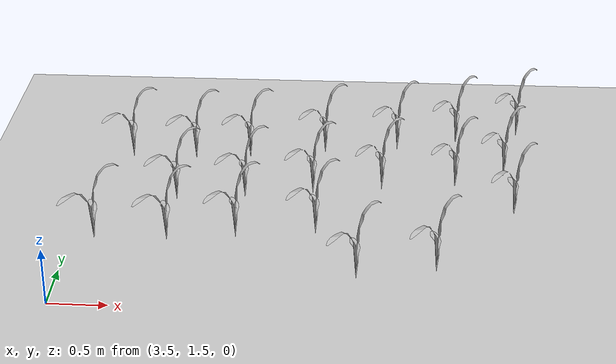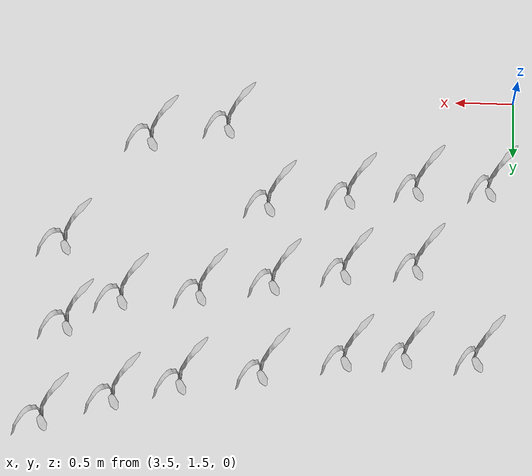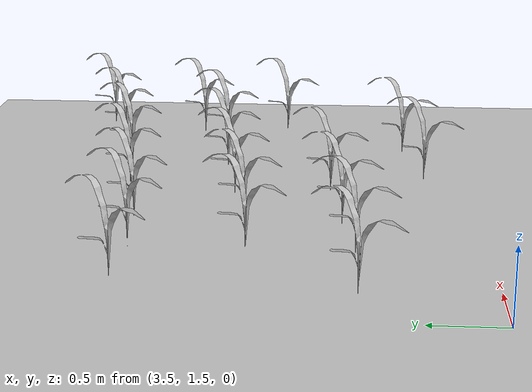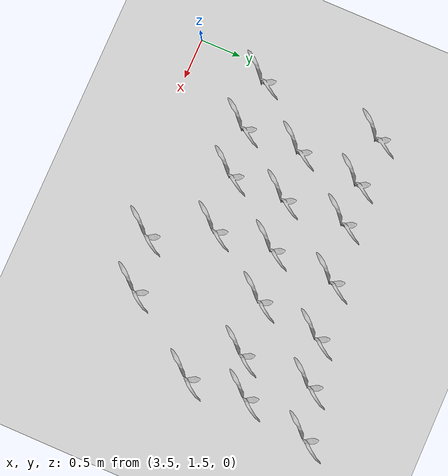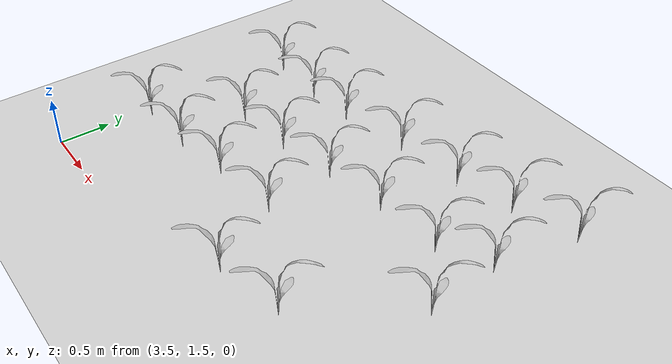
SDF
<sdf version="1.7">
 <world name="default">
  <model name="ground_plane">
   <static>1</static>
   <link name="link">
    <collision name="collision">
     <geometry><plane><normal>0 0 1</normal><size>100 100</size></plane></geometry>
     <surface>
      <contact><collide_bitmask>65535</collide_bitmask></contact>
      <friction><ode><mu>100</mu><mu2>50</mu2></ode></friction>
     </surface>
    </collision>
    <visual name="visual">
     <cast_shadows>0</cast_shadows>
     <geometry><plane><normal>0 0 1</normal><size>100 100</size></plane></geometry>
     <material>
      <script><uri>file://media/materials/scripts/gazebo.material</uri><name>Gazebo/Grey</name></script>
     </material>
    </visual>
   </link>
  </model>
  <model name="field_row_full_double">
   <model name="maize_02_clone_105">
    <pose>-1.27071 0.57683 0.000249 0 -0 0</pose>
    <link name="maize_02_link">
     <inertial>
      <pose>0 0 0.01 0 -0 0</pose>
      <mass>0.3</mass>
      <inertia>
       <ixx>0.00334167</ixx>
       <ixy>0</ixy>
       <ixz>0</ixz>
       <iyy>0.00334167</iyy>
       <iyz>0</iyz>
       <izz>1.66667e-05</izz>
      </inertia>
      <pose>0 0 0.1 0 -0 0</pose>
     </inertial>
     <collision name="collision">
      <pose>0 0 0.2 0 -0 0</pose>
      <geometry><box><size>0.02 0.02 0.4</size></box></geometry>
      <surface><friction><ode><mu>10</mu><mu2>10</mu2></ode></friction></surface>
     </collision>
     <visual name="visual">
      <geometry>
       <mesh><uri>model://maize_02/meshes/maize_02.dae</uri><scale>0.683166 0.683166 0.683166</scale></mesh>
      </geometry>
     </visual>
    </link>
   </model>
   <model name="maize_02_clone_106">
    <pose>-0.685713 0.61283 0.000249 0 -0 0</pose>
    <link name="maize_02_link">
     <inertial>
      <pose>0 0 0.01 0 -0 0</pose>
      <mass>0.3</mass>
      <inertia>
       <ixx>0.00334167</ixx>
       <ixy>0</ixy>
       <ixz>0</ixz>
       <iyy>0.00334167</iyy>
       <iyz>0</iyz>
       <izz>1.66667e-05</izz>
      </inertia>
      <pose>0 0 0.1 0 -0 0</pose>
     </inertial>
     <collision name="collision">
      <pose>0 0 0.2 0 -0 0</pose>
      <geometry><box><size>0.02 0.02 0.4</size></box></geometry>
      <surface><friction><ode><mu>10</mu><mu2>10</mu2></ode></friction></surface>
     </collision>
     <visual name="visual">
      <geometry>
       <mesh><uri>model://maize_02/meshes/maize_02.dae</uri><scale>0.683166 0.683166 0.683166</scale></mesh>
      </geometry>
     </visual>
    </link>
   </model>
   <model name="maize_02_clone_107">
    <pose>-0.190713 0.69383 0.000249 0 -0 0</pose>
    <link name="maize_02_link">
     <inertial>
      <pose>0 0 0.01 0 -0 0</pose>
      <mass>0.3</mass>
      <inertia>
       <ixx>0.00334167</ixx>
       <ixy>0</ixy>
       <ixz>0</ixz>
       <iyy>0.00334167</iyy>
       <iyz>0</iyz>
       <izz>1.66667e-05</izz>
      </inertia>
      <pose>0 0 0.1 0 -0 0</pose>
     </inertial>
     <collision name="collision">
      <pose>0 0 0.2 0 -0 0</pose>
      <geometry><box><size>0.02 0.02 0.4</size></box></geometry>
      <surface><friction><ode><mu>10</mu><mu2>10</mu2></ode></friction></surface>
     </collision>
     <visual name="visual">
      <geometry>
       <mesh><uri>model://maize_02/meshes/maize_02.dae</uri><scale>0.683166 0.683166 0.683166</scale></mesh>
      </geometry>
     </visual>
    </link>
   </model>
   <model name="maize_02_clone_108">
    <pose>0.484286 0.89183 0.000249 0 -0 0</pose>
    <link name="maize_02_link">
     <inertial>
      <pose>0 0 0.01 0 -0 0</pose>
      <mass>0.3</mass>
      <inertia>
       <ixx>0.00334167</ixx>
       <ixy>0</ixy>
       <ixz>0</ixz>
       <iyy>0.00334167</iyy>
       <iyz>0</iyz>
       <izz>1.66667e-05</izz>
      </inertia>
      <pose>0 0 0.1 0 -0 0</pose>
     </inertial>
     <collision name="collision">
      <pose>0 0 0.2 0 -0 0</pose>
      <geometry><box><size>0.02 0.02 0.4</size></box></geometry>
      <surface><friction><ode><mu>10</mu><mu2>10</mu2></ode></friction></surface>
     </collision>
     <visual name="visual">
      <geometry>
       <mesh><uri>model://maize_02/meshes/maize_02.dae</uri><scale>0.683166 0.683166 0.683166</scale></mesh>
      </geometry>
     </visual>
    </link>
   </model>
   <model name="maize_02_clone_142">
    <pose>1.01409 -1.26469 0.000249 0 -0 0</pose>
    <link name="maize_02_link">
     <inertial>
      <pose>0 0 0.01 0 -0 0</pose>
      <mass>0.3</mass>
      <inertia>
       <ixx>0.00334167</ixx>
       <ixy>0</ixy>
       <ixz>0</ixz>
       <iyy>0.00334167</iyy>
       <iyz>0</iyz>
       <izz>1.66667e-05</izz>
      </inertia>
      <pose>0 0 0.1 0 -0 0</pose>
     </inertial>
     <collision name="collision">
      <pose>0 0 0.2 0 -0 0</pose>
      <geometry><box><size>0.02 0.02 0.4</size></box></geometry>
      <surface><friction><ode><mu>10</mu><mu2>10</mu2></ode></friction></surface>
     </collision>
     <visual name="visual">
      <geometry>
       <mesh><uri>model://maize_02/meshes/maize_02.dae</uri><scale>0.683166 0.683166 0.683166</scale></mesh>
      </geometry>
     </visual>
    </link>
   </model>
   <model name="maize_02_clone_143">
    <pose>1.65384 -1.07449 0.000249 0 -0 0</pose>
    <link name="maize_02_link">
     <inertial>
      <pose>0 0 0.01 0 -0 0</pose>
      <mass>0.3</mass>
      <inertia>
       <ixx>0.00334167</ixx>
       <ixy>0</ixy>
       <ixz>0</ixz>
       <iyy>0.00334167</iyy>
       <iyz>0</iyz>
       <izz>1.66667e-05</izz>
      </inertia>
      <pose>0 0 0.1 0 -0 0</pose>
     </inertial>
     <collision name="collision">
      <pose>0 0 0.2 0 -0 0</pose>
      <geometry><box><size>0.02 0.02 0.4</size></box></geometry>
      <surface><friction><ode><mu>10</mu><mu2>10</mu2></ode></friction></surface>
     </collision>
     <visual name="visual">
      <geometry>
       <mesh><uri>model://maize_02/meshes/maize_02.dae</uri><scale>0.683166 0.683166 0.683166</scale></mesh>
      </geometry>
     </visual>
    </link>
   </model>
   <model name="maize_02_clone_153">
    <pose>2.25902 -0.062983 0.000249 0 -0 0</pose>
    <link name="maize_02_link">
     <inertial>
      <pose>0 0 0.01 0 -0 0</pose>
      <mass>0.3</mass>
      <inertia>
       <ixx>0.00334167</ixx>
       <ixy>0</ixy>
       <ixz>0</ixz>
       <iyy>0.00334167</iyy>
       <iyz>0</iyz>
       <izz>1.66667e-05</izz>
      </inertia>
      <pose>0 0 0.1 0 -0 0</pose>
     </inertial>
     <collision name="collision">
      <pose>0 0 0.2 0 -0 0</pose>
      <geometry><box><size>0.02 0.02 0.4</size></box></geometry>
      <surface><friction><ode><mu>10</mu><mu2>10</mu2></ode></friction></surface>
     </collision>
     <visual name="visual">
      <geometry>
       <mesh><uri>model://maize_02/meshes/maize_02.dae</uri><scale>0.683166 0.683166 0.683166</scale></mesh>
      </geometry>
     </visual>
    </link>
   </model>
   <model name="maize_02_clone_154">
    <pose>1.0746 0.256896 0.000249 0 -0 0</pose>
    <link name="maize_02_link">
     <inertial>
      <pose>0 0 0.01 0 -0 0</pose>
      <mass>0.3</mass>
      <inertia>
       <ixx>0.00334167</ixx>
       <ixy>0</ixy>
       <ixz>0</ixz>
       <iyy>0.00334167</iyy>
       <iyz>0</iyz>
       <izz>1.66667e-05</izz>
      </inertia>
      <pose>0 0 0.1 0 -0 0</pose>
     </inertial>
     <collision name="collision">
      <pose>0 0 0.2 0 -0 0</pose>
      <geometry><box><size>0.02 0.02 0.4</size></box></geometry>
      <surface><friction><ode><mu>10</mu><mu2>10</mu2></ode></friction></surface>
     </collision>
     <visual name="visual">
      <geometry>
       <mesh><uri>model://maize_02/meshes/maize_02.dae</uri><scale>0.683166 0.683166 0.683166</scale></mesh>
      </geometry>
     </visual>
    </link>
   </model>
   <model name="maize_02_clone_155">
    <pose>1.72301 0.369285 0.000249 0 -0 0</pose>
    <link name="maize_02_link">
     <inertial>
      <pose>0 0 0.01 0 -0 0</pose>
      <mass>0.3</mass>
      <inertia>
       <ixx>0.00334167</ixx>
       <ixy>0</ixy>
       <ixz>0</ixz>
       <iyy>0.00334167</iyy>
       <iyz>0</iyz>
       <izz>1.66667e-05</izz>
      </inertia>
      <pose>0 0 0.1 0 -0 0</pose>
     </inertial>
     <collision name="collision">
      <pose>0 0 0.2 0 -0 0</pose>
      <geometry><box><size>0.02 0.02 0.4</size></box></geometry>
      <surface><friction><ode><mu>10</mu><mu2>10</mu2></ode></friction></surface>
     </collision>
     <visual name="visual">
      <geometry>
       <mesh><uri>model://maize_02/meshes/maize_02.dae</uri><scale>0.683166 0.683166 0.683166</scale></mesh>
      </geometry>
     </visual>
    </link>
   </model>
   <model name="maize_02_clone_156">
    <pose>2.14663 0.645937 0.000249 0 -0 0</pose>
    <link name="maize_02_link">
     <inertial>
      <pose>0 0 0.01 0 -0 0</pose>
      <mass>0.3</mass>
      <inertia>
       <ixx>0.00334167</ixx>
       <ixy>0</ixy>
       <ixz>0</ixz>
       <iyy>0.00334167</iyy>
       <iyz>0</iyz>
       <izz>1.66667e-05</izz>
      </inertia>
      <pose>0 0 0.1 0 -0 0</pose>
     </inertial>
     <collision name="collision">
      <pose>0 0 0.2 0 -0 0</pose>
      <geometry><box><size>0.02 0.02 0.4</size></box></geometry>
      <surface><friction><ode><mu>10</mu><mu2>10</mu2></ode></friction></surface>
     </collision>
     <visual name="visual">
      <geometry>
       <mesh><uri>model://maize_02/meshes/maize_02.dae</uri><scale>0.683166 0.683166 0.683166</scale></mesh>
      </geometry>
     </visual>
    </link>
   </model>
   <model name="maize_02_clone_167">
    <pose>2.24173 1.47589 0.000249 0 -0 0</pose>
    <link name="maize_02_link">
     <inertial>
      <pose>0 0 0.01 0 -0 0</pose>
      <mass>0.3</mass>
      <inertia>
       <ixx>0.00334167</ixx>
       <ixy>0</ixy>
       <ixz>0</ixz>
       <iyy>0.00334167</iyy>
       <iyz>0</iyz>
       <izz>1.66667e-05</izz>
      </inertia>
      <pose>0 0 0.1 0 -0 0</pose>
     </inertial>
     <collision name="collision">
      <pose>0 0 0.2 0 -0 0</pose>
      <geometry><box><size>0.02 0.02 0.4</size></box></geometry>
      <surface><friction><ode><mu>10</mu><mu2>10</mu2></ode></friction></surface>
     </collision>
     <visual name="visual">
      <geometry>
       <mesh><uri>model://maize_02/meshes/maize_02.dae</uri><scale>0.683166 0.683166 0.683166</scale></mesh>
      </geometry>
     </visual>
    </link>
   </model>
   <model name="maize_02_clone_168">
    <pose>1.67978 1.23382 0.000249 0 -0 0</pose>
    <link name="maize_02_link">
     <inertial>
      <pose>0 0 0.01 0 -0 0</pose>
      <mass>0.3</mass>
      <inertia>
       <ixx>0.00334167</ixx>
       <ixy>0</ixy>
       <ixz>0</ixz>
       <iyy>0.00334167</iyy>
       <iyz>0</iyz>
       <izz>1.66667e-05</izz>
      </inertia>
      <pose>0 0 0.1 0 -0 0</pose>
     </inertial>
     <collision name="collision">
      <pose>0 0 0.2 0 -0 0</pose>
      <geometry><box><size>0.02 0.02 0.4</size></box></geometry>
      <surface><friction><ode><mu>10</mu><mu2>10</mu2></ode></friction></surface>
     </collision>
     <visual name="visual">
      <geometry>
       <mesh><uri>model://maize_02/meshes/maize_02.dae</uri><scale>0.683166 0.683166 0.683166</scale></mesh>
      </geometry>
     </visual>
    </link>
   </model>
   <model name="maize_02_clone_169">
    <pose>1.14377 1.04362 0.000249 0 -0 0</pose>
    <link name="maize_02_link">
     <inertial>
      <pose>0 0 0.01 0 -0 0</pose>
      <mass>0.3</mass>
      <inertia>
       <ixx>0.00334167</ixx>
       <ixy>0</ixy>
       <ixz>0</ixz>
       <iyy>0.00334167</iyy>
       <iyz>0</iyz>
       <izz>1.66667e-05</izz>
      </inertia>
      <pose>0 0 0.1 0 -0 0</pose>
     </inertial>
     <collision name="collision">
      <pose>0 0 0.2 0 -0 0</pose>
      <geometry><box><size>0.02 0.02 0.4</size></box></geometry>
      <surface><friction><ode><mu>10</mu><mu2>10</mu2></ode></friction></surface>
     </collision>
     <visual name="visual">
      <geometry>
       <mesh><uri>model://maize_02/meshes/maize_02.dae</uri><scale>0.683166 0.683166 0.683166</scale></mesh>
      </geometry>
     </visual>
    </link>
   </model>
   <model name="maize_02_clone_86">
    <pose>-1.25271 -0.935169 0.000249 0 -0 0</pose>
    <link name="maize_02_link">
     <inertial>
      <pose>0 0 0.01 0 -0 0</pose>
      <mass>0.3</mass>
      <inertia>
       <ixx>0.00334167</ixx>
       <ixy>0</ixy>
       <ixz>0</ixz>
       <iyy>0.00334167</iyy>
       <iyz>0</iyz>
       <izz>1.66667e-05</izz>
      </inertia>
      <pose>0 0 0.1 0 -0 0</pose>
     </inertial>
     <collision name="collision">
      <pose>0 0 0.2 0 -0 0</pose>
      <geometry><box><size>0.02 0.02 0.4</size></box></geometry>
      <surface><friction><ode><mu>10</mu><mu2>10</mu2></ode></friction></surface>
     </collision>
     <visual name="visual">
      <geometry>
       <mesh><uri>model://maize_02/meshes/maize_02.dae</uri><scale>0.683166 0.683166 0.683166</scale></mesh>
      </geometry>
     </visual>
    </link>
   </model>
   <model name="maize_02_clone_87">
    <pose>-0.640714 -0.872169 0.000249 0 -0 0</pose>
    <link name="maize_02_link">
     <inertial>
      <pose>0 0 0.01 0 -0 0</pose>
      <mass>0.3</mass>
      <inertia>
       <ixx>0.00334167</ixx>
       <ixy>0</ixy>
       <ixz>0</ixz>
       <iyy>0.00334167</iyy>
       <iyz>0</iyz>
       <izz>1.66667e-05</izz>
      </inertia>
      <pose>0 0 0.1 0 -0 0</pose>
     </inertial>
     <collision name="collision">
      <pose>0 0 0.2 0 -0 0</pose>
      <geometry><box><size>0.02 0.02 0.4</size></box></geometry>
      <surface><friction><ode><mu>10</mu><mu2>10</mu2></ode></friction></surface>
     </collision>
     <visual name="visual">
      <geometry>
       <mesh><uri>model://maize_02/meshes/maize_02.dae</uri><scale>0.683166 0.683166 0.683166</scale></mesh>
      </geometry>
     </visual>
    </link>
   </model>
   <model name="maize_02_clone_88">
    <pose>-0.073714 -0.737169 0.000249 0 -0 0</pose>
    <link name="maize_02_link">
     <inertial>
      <pose>0 0 0.01 0 -0 0</pose>
      <mass>0.3</mass>
      <inertia>
       <ixx>0.00334167</ixx>
       <ixy>0</ixy>
       <ixz>0</ixz>
       <iyy>0.00334167</iyy>
       <iyz>0</iyz>
       <izz>1.66667e-05</izz>
      </inertia>
      <pose>0 0 0.1 0 -0 0</pose>
     </inertial>
     <collision name="collision">
      <pose>0 0 0.2 0 -0 0</pose>
      <geometry><box><size>0.02 0.02 0.4</size></box></geometry>
      <surface><friction><ode><mu>10</mu><mu2>10</mu2></ode></friction></surface>
     </collision>
     <visual name="visual">
      <geometry>
       <mesh><uri>model://maize_02/meshes/maize_02.dae</uri><scale>0.683166 0.683166 0.683166</scale></mesh>
      </geometry>
     </visual>
    </link>
   </model>
   <model name="maize_02_clone_89">
    <pose>0.592286 -0.59317 0.000249 0 -0 0</pose>
    <link name="maize_02_link">
     <inertial>
      <pose>0 0 0.01 0 -0 0</pose>
      <mass>0.3</mass>
      <inertia>
       <ixx>0.00334167</ixx>
       <ixy>0</ixy>
       <ixz>0</ixz>
       <iyy>0.00334167</iyy>
       <iyz>0</iyz>
       <izz>1.66667e-05</izz>
      </inertia>
      <pose>0 0 0.1 0 -0 0</pose>
     </inertial>
     <collision name="collision">
      <pose>0 0 0.2 0 -0 0</pose>
      <geometry><box><size>0.02 0.02 0.4</size></box></geometry>
      <surface><friction><ode><mu>10</mu><mu2>10</mu2></ode></friction></surface>
     </collision>
     <visual name="visual">
      <geometry>
       <mesh><uri>model://maize_02/meshes/maize_02.dae</uri><scale>0.683166 0.683166 0.683166</scale></mesh>
      </geometry>
     </visual>
    </link>
   </model>
   <model name="maize_02_clone_90">
    <pose>0.475286 0.09983 0.000249 0 -0 0</pose>
    <link name="maize_02_link">
     <inertial>
      <pose>0 0 0.01 0 -0 0</pose>
      <mass>0.3</mass>
      <inertia>
       <ixx>0.00334167</ixx>
       <ixy>0</ixy>
       <ixz>0</ixz>
       <iyy>0.00334167</iyy>
       <iyz>0</iyz>
       <izz>1.66667e-05</izz>
      </inertia>
      <pose>0 0 0.1 0 -0 0</pose>
     </inertial>
     <collision name="collision">
      <pose>0 0 0.2 0 -0 0</pose>
      <geometry><box><size>0.02 0.02 0.4</size></box></geometry>
      <surface><friction><ode><mu>10</mu><mu2>10</mu2></ode></friction></surface>
     </collision>
     <visual name="visual">
      <geometry>
       <mesh><uri>model://maize_02/meshes/maize_02.dae</uri><scale>0.683166 0.683166 0.683166</scale></mesh>
      </geometry>
     </visual>
    </link>
   </model>
   <model name="maize_02_clone_91">
    <pose>-0.109714 -0.06217 0.000249 0 -0 0</pose>
    <link name="maize_02_link">
     <inertial>
      <pose>0 0 0.01 0 -0 0</pose>
      <mass>0.3</mass>
      <inertia>
       <ixx>0.00334167</ixx>
       <ixy>0</ixy>
       <ixz>0</ixz>
       <iyy>0.00334167</iyy>
       <iyz>0</iyz>
       <izz>1.66667e-05</izz>
      </inertia>
      <pose>0 0 0.1 0 -0 0</pose>
     </inertial>
     <collision name="collision">
      <pose>0 0 0.2 0 -0 0</pose>
      <geometry><box><size>0.02 0.02 0.4</size></box></geometry>
      <surface><friction><ode><mu>10</mu><mu2>10</mu2></ode></friction></surface>
     </collision>
     <visual name="visual">
      <geometry>
       <mesh><uri>model://maize_02/meshes/maize_02.dae</uri><scale>0.683166 0.683166 0.683166</scale></mesh>
      </geometry>
     </visual>
    </link>
   </model>
   <model name="maize_02_clone_92">
    <pose>-0.703714 -0.170169 0.000249 0 -0 0</pose>
    <link name="maize_02_link">
     <inertial>
      <pose>0 0 0.01 0 -0 0</pose>
      <mass>0.3</mass>
      <inertia>
       <ixx>0.00334167</ixx>
       <ixy>0</ixy>
       <ixz>0</ixz>
       <iyy>0.00334167</iyy>
       <iyz>0</iyz>
       <izz>1.66667e-05</izz>
      </inertia>
      <pose>0 0 0.1 0 -0 0</pose>
     </inertial>
     <collision name="collision">
      <pose>0 0 0.2 0 -0 0</pose>
      <geometry><box><size>0.02 0.02 0.4</size></box></geometry>
      <surface><friction><ode><mu>10</mu><mu2>10</mu2></ode></friction></surface>
     </collision>
     <visual name="visual">
      <geometry>
       <mesh><uri>model://maize_02/meshes/maize_02.dae</uri><scale>0.683166 0.683166 0.683166</scale></mesh>
      </geometry>
     </visual>
    </link>
   </model>
   <static>0</static>
   <pose>5.06014 3.21474 0.082285 6e-06 -5e-05 -0.080663</pose>
  </model>
 </world>
</sdf>
